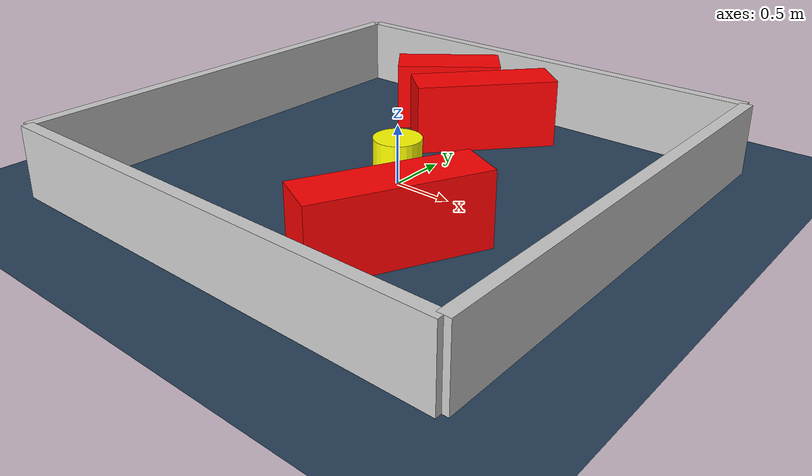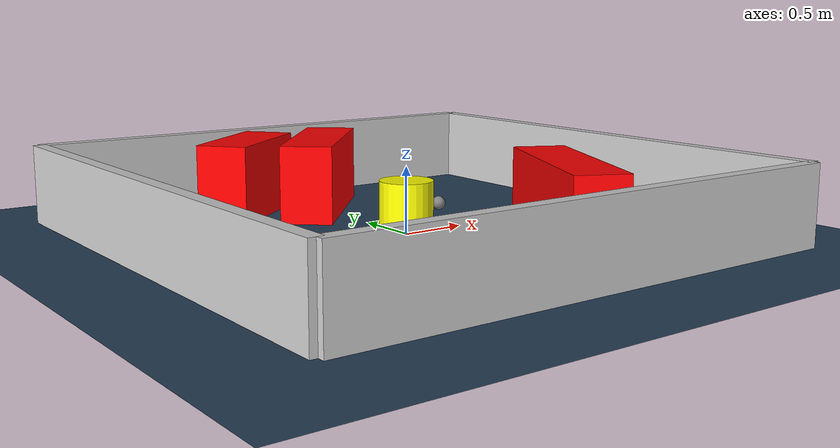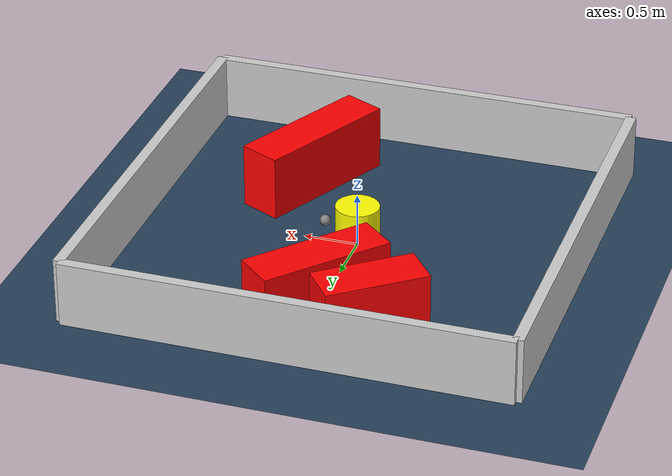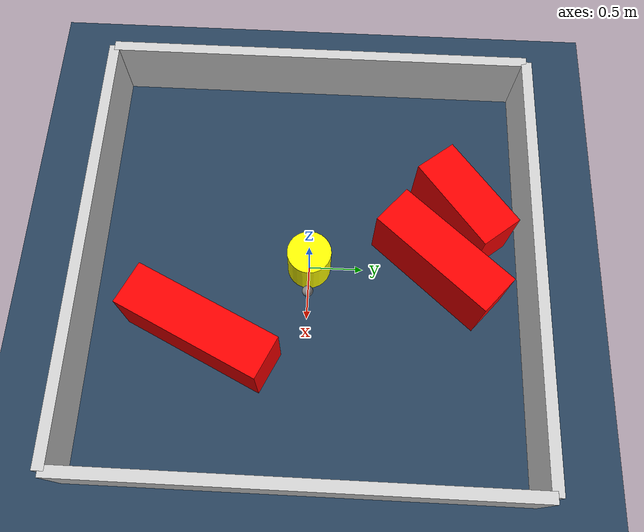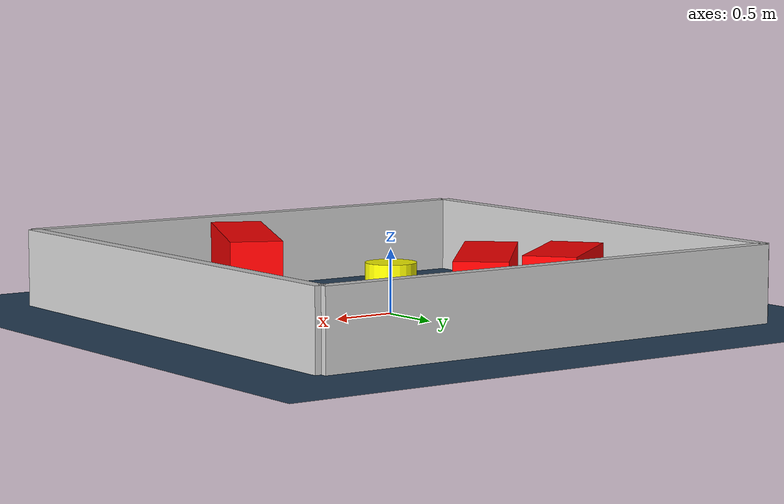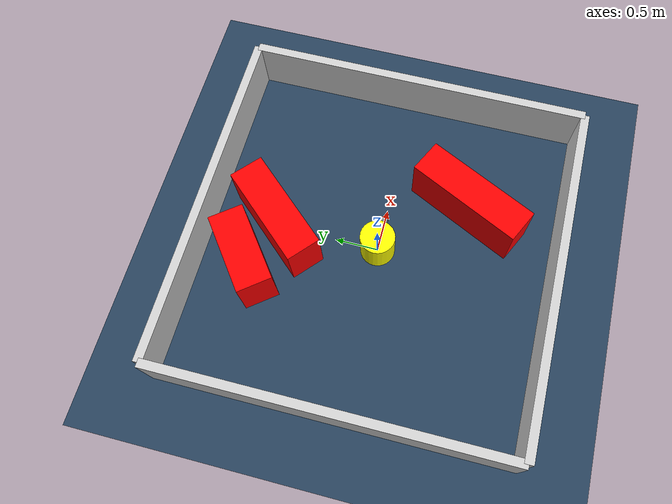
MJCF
<?xml version="1.0" ?>
<mujoco model="generated_environment">
  <option timestep="0.01" integrator="RK4" cone="elliptic"/>
  <default>
    <geom density="1"/>
  </default>
  <asset>
    <texture builtin="gradient" height="3072" rgb1="0.3 0.5 0.7" rgb2="0 0 0" type="skybox" width="512"/>
    <texture builtin="checker" height="300" mark="edge" markrgb="0.8 0.8 0.8" name="groundplane" rgb1="0.2 0.3 0.4" rgb2="0.1 0.2 0.3" type="2d" width="300"/>
    <material name="groundplane" reflectance="0.2" texrepeat="5 5" texture="groundplane" texuniform="true"/>
    <material name="robot" rgba="0.0 1.0 0.0 1"/>
  </asset>
  <worldbody>
    <light dir="0 0 -1" directional="true" pos="0 0 1.5"/>
    <geom condim="4" friction="1.0 0.005 0.001" material="groundplane" name="floor" size="0 0 0.05" type="plane"/>
    <body name="walls">
      <geom name="wall_1" condim="4" pos="-2.0 0.0 0.3" rgba="0.800000011920929 0.800000011920929 0.800000011920929 1.0" size="0.05 2.0 0.3" type="box"/>
      <geom name="wall_2" condim="4" pos="2.0 0.0 0.3" rgba="0.800000011920929 0.800000011920929 0.800000011920929 1.0" size="0.05 2.0 0.3" type="box"/>
      <geom name="wall_3" condim="4" pos="0.0 -2.0 0.3" rgba="0.800000011920929 0.800000011920929 0.800000011920929 1.0" size="2.0 0.05 0.3" type="box"/>
      <geom name="wall_4" condim="4" pos="0.0 2.0 0.3" rgba="0.800000011920929 0.800000011920929 0.800000011920929 1.0" size="2.0 0.05 0.3" type="box"/>
    </body>
    <body name="robot">
      <joint name="joint_x" type="slide" pos="0 0 0" axis="1 0 0"/>
      <joint name="joint_y" type="slide" pos="0 0 0" axis="0 1 0"/>
      <geom name="robot" type="sphere" pos="0.3 0.0 0.2" size="0.05" mass="5." friction="1.0 0.005 0.0001" condim="4" rgba="0.5 0.5 0.5 1.0"/>
      <site name="sensor_ball"/>
    </body>
    <body name="obstacle_movable_1">
      <geom name="obstacle_movable_1" condim="4" pos="0.0 0.0 0.2" euler="0 0 0.0" friction="1.0 0.005 0.001" rgba="1.0 1.0 0.0 1.0" size="0.2 0.2 0.0" type="cylinder" mass="0.1"/>
      <joint type="free"/>
    </body>
    <body name="obstacle_2_static">
      <geom name="obstacle_2_static" condim="4" pos="-0.5603054200025251 1.3960565657734623 0.3" euler="0 0 218.07940597729066" friction="1.0 0.005 0.001" rgba="1 0 0 1" size="0.4674415873973725 0.2 0.3" type="box"/>
    </body>
    <body name="obstacle_3_static">
      <geom name="obstacle_3_static" condim="4" pos="0.7283861334305359 -0.918165680608518 0.3" euler="0 0 244.2114623536616" friction="1.0 0.005 0.001" rgba="1 0 0 1" size="0.6870917963594843 0.2 0.3" type="box"/>
    </body>
    <body name="obstacle_4_static">
      <geom name="obstacle_4_static" condim="4" pos="-0.013606760047309319 1.176874410480312 0.3" euler="0 0 48.71407499103605" friction="1.0 0.005 0.001" rgba="1 0 0 1" size="0.614083011729101 0.2 0.3" type="box"/>
    </body>
  </worldbody>
  <actuator>
    <motor name="actuator_x" joint="joint_x" gear="1" ctrlrange="-1 1"/>
    <motor name="actuator_y" joint="joint_y" gear="1" ctrlrange="-1 1"/>
  </actuator>
</mujoco>
